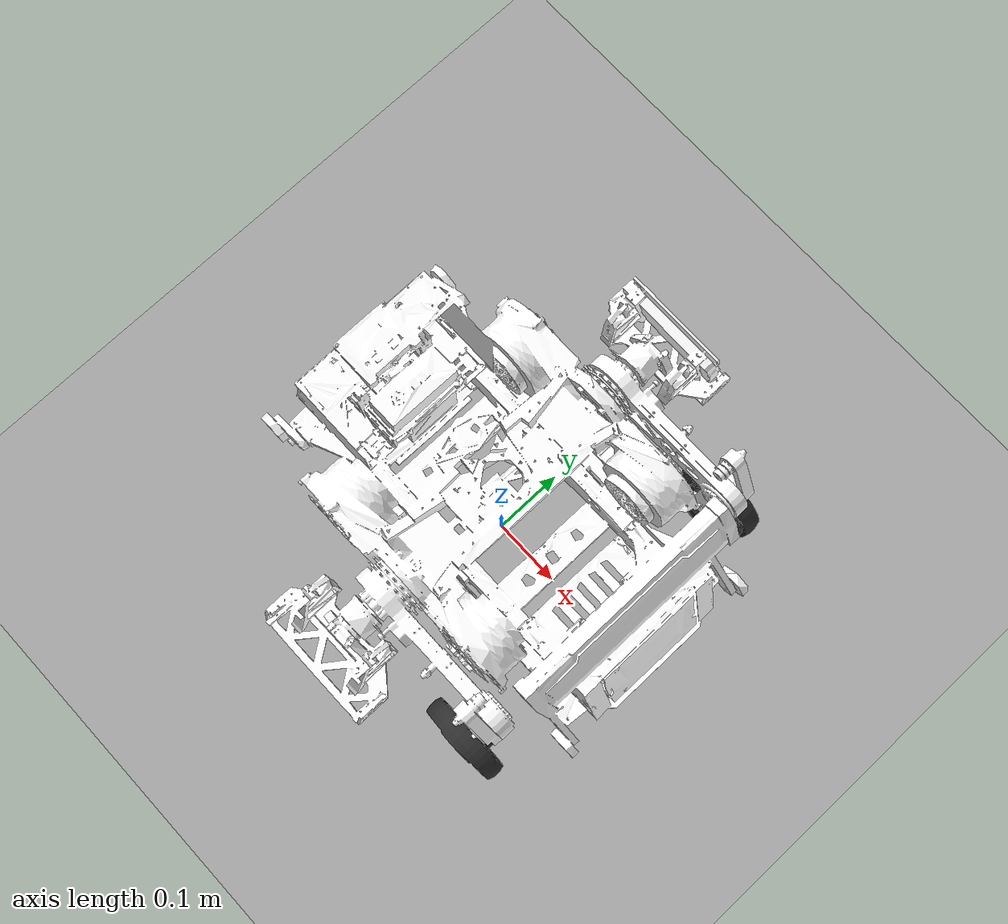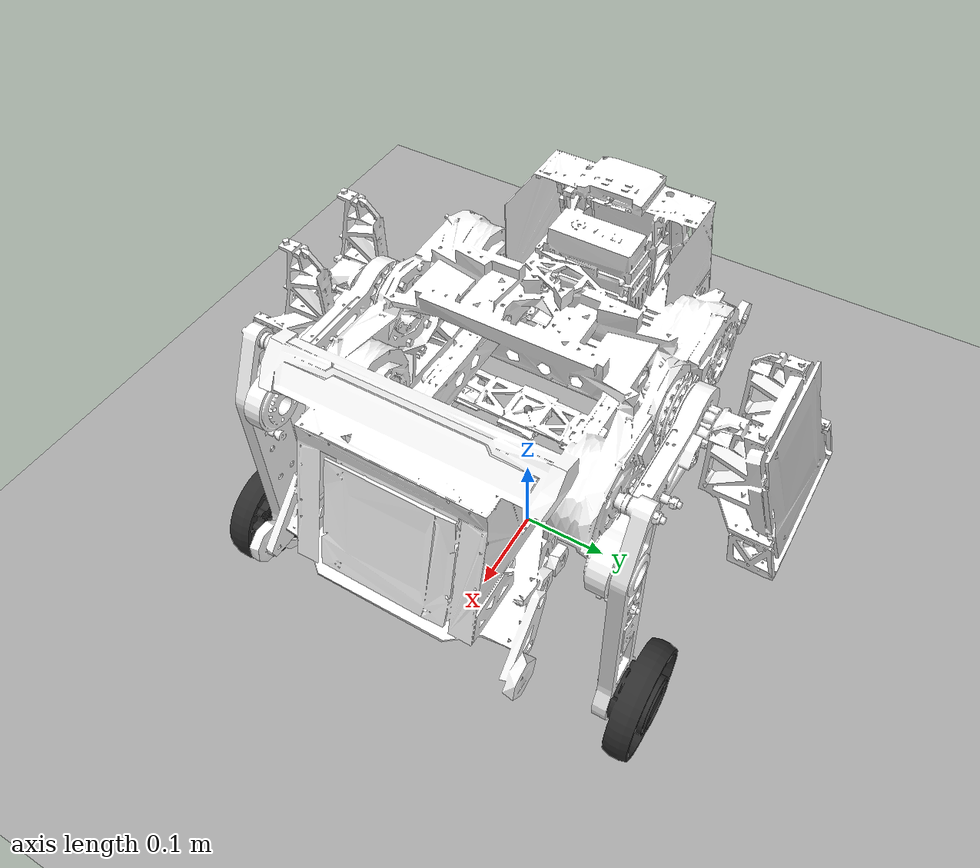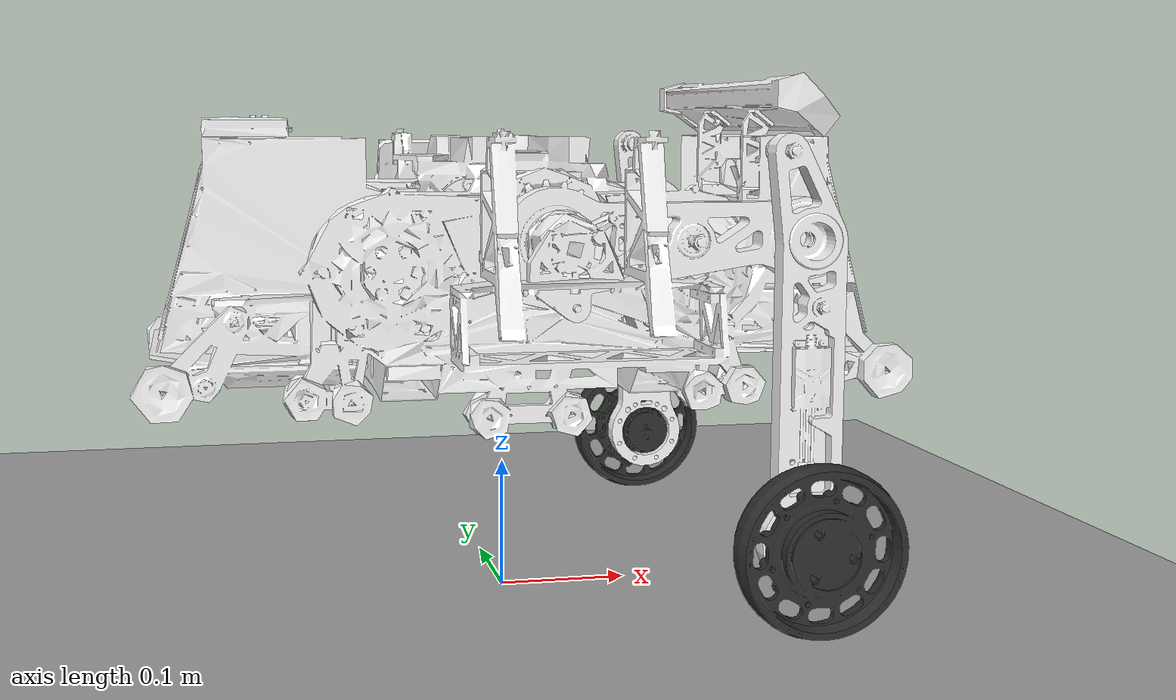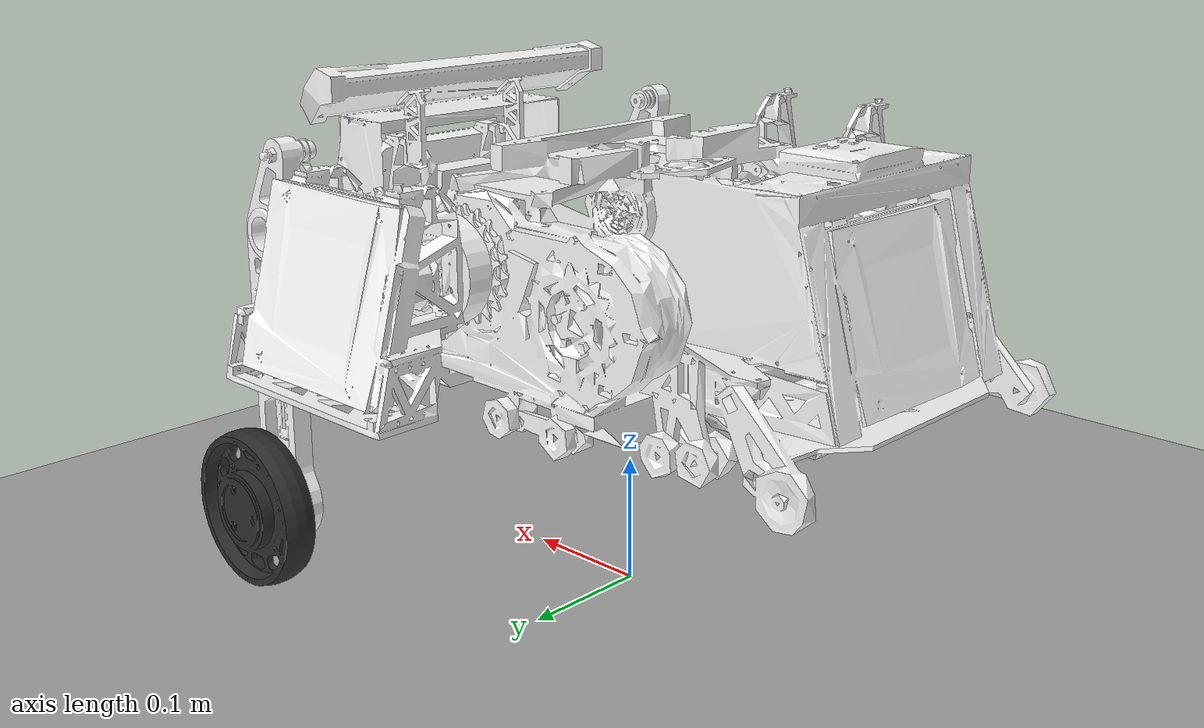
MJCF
<mujoco model="infantry_V4_serial">
  <!-- Nominal MuJoCo counterpart of the Isaac Gym infantry_V4_increase URDF. -->
  <compiler angle="radian" balanceinertia="true"
            meshdir="../../../../plane/resources/robots/infantry_V4/meshes"/>
  <option timestep="0.005" gravity="0 0 -9.81" integrator="implicitfast" solver="Newton" iterations="100"/>

  <default>
    <joint armature="0" damping="0" frictionloss="0"/>
    <!-- PhysX restitution=0.5 is approximated by an under-damped MuJoCo contact. -->
    <geom contype="1" conaffinity="1" condim="3" friction="0.5 0 0" solref="0.02 0.21545"/>
  </default>

  <asset>
    <mesh name="base_link_mesh" file="base_link.STL"/>
    <mesh name="rf0_mesh" file="rf0_Link.STL"/>
    <mesh name="rf1_mesh" file="rf1_Link.STL"/>
    <mesh name="r_wheel_mesh" file="r_wheel_Link.STL"/>
    <mesh name="lf0_mesh" file="lf0_Link.STL"/>
    <mesh name="lf1_mesh" file="lf1_Link.STL"/>
    <mesh name="l_wheel_mesh" file="l_wheel_Link.STL"/>
  </asset>

  <worldbody>
    <geom name="floor" type="plane" size="40 40 0.1" contype="1" conaffinity="1"
          friction="0.5 0 0" rgba="0.65 0.65 0.65 1"/>

    <body name="base_link" pos="0 0 0.2">
      <freejoint/>
      <inertial pos="-0.00406060 0.0008523 0.097142"
                mass="16.8775740"
                fullinertia="0.3595155 0.35249 0.45655 -0.00174358 -0.00825907 -0.00214156"/>
      <site name="imu_site" pos="0 0 0" size="0.005"/>
      <geom name="base_geom" type="mesh" mesh="base_link_mesh" rgba="1 1 1 1"/>

      <!-- Right serial chain. The order matches the URDF and Isaac DOF tensor. -->
      <body name="rf0_Link" pos="0 -0.1877 0.08725" euler="1.5708 0 0">
        <inertial pos="0.05527628 -0.01655437 -0.00927161" mass="1.1132"
                  fullinertia="0.00207047 0.00467389 0.00640479 -0.00022911 -0.00015432 0.00011008"/>
        <joint name="rf0_Joint" type="hinge" axis="0 0 1" limited="true"
               range="-100 100" actuatorfrcrange="-50 50"/>
        <geom type="mesh" mesh="rf0_mesh" rgba="1 1 1 1"/>
        <body name="rf1_Link" pos="0.17472 0 0">
          <inertial pos="-0.00283459 -0.07106759 0.0068255" mass="0.3068726"
                    fullinertia="0.00247367 0.00009262 0.00253997 0.0001249 -0.00000342 0.00003434"/>
          <joint name="rf1_Joint" type="hinge" axis="0 0 1" limited="true"
                 range="-1.1 0.65" actuatorfrcrange="-50 50"/>
          <geom type="mesh" mesh="rf1_mesh" rgba="1 1 1 1"/>
          <body name="r_wheel_Link" pos="0 -0.208 0.016">
            <inertial pos="0.0000043469 -0.00019294 0.019568" mass="0.49069"
                      fullinertia="0.00033972 0.00034147 0.00068188 0 0.00000003 -0.00000152"/>
            <joint name="r_wheel_Joint" type="hinge" axis="0 0 1"
                   actuatorfrcrange="-5 5"/>
            <geom type="mesh" mesh="r_wheel_mesh" rgba="0.18 0.18 0.18 1"/>
          </body>
        </body>
      </body>

      <!-- Left serial chain. -->
      <body name="lf0_Link" pos="0 0.1877 0.08725" euler="-1.5708 0 0">
        <inertial pos="0.055403 0.016584 -0.0092702" mass="1.1128"
                  fullinertia="0.00207221 0.00466506 0.00639795 0.00022396 -0.00015529 -0.00011027"/>
        <joint name="lf0_Joint" type="hinge" axis="0 0 1" limited="true"
               range="-100 100" actuatorfrcrange="-50 50"/>
        <geom type="mesh" mesh="lf0_mesh" rgba="1 1 1 1"/>
        <body name="lf1_Link" pos="0.17472 0 0">
          <inertial pos="-0.0028358 0.071068 0.0068255" mass="0.30687"
                    fullinertia="0.00247367 0.00009262 0.00253997 -0.0001249 -0.00000342 -0.00003434"/>
          <joint name="lf1_Joint" type="hinge" axis="0 0 1" limited="true"
                 range="-0.65 1.1" actuatorfrcrange="-50 50"/>
          <geom type="mesh" mesh="lf1_mesh" rgba="1 1 1 1"/>
          <body name="l_wheel_Link" pos="0 0.208 0.016">
            <inertial pos="-0.0000043477 0.00019294 0.019568" mass="0.49069"
                      fullinertia="0.00033972 0.00034147 0.00068188 0 -0.00000003 0.00000152"/>
            <joint name="l_wheel_Joint" type="hinge" axis="0 0 1"
                   actuatorfrcrange="-5 5"/>
            <geom type="mesh" mesh="l_wheel_mesh" rgba="0.18 0.18 0.18 1"/>
          </body>
        </body>
      </body>
    </body>
  </worldbody>

  <actuator>
    <motor name="act_rf0" joint="rf0_Joint" gear="1" ctrllimited="true" ctrlrange="-50 50"/>
    <motor name="act_rf1" joint="rf1_Joint" gear="1" ctrllimited="true" ctrlrange="-50 50"/>
    <motor name="act_rw" joint="r_wheel_Joint" gear="1" ctrllimited="true" ctrlrange="-5 5"/>
    <motor name="act_lf0" joint="lf0_Joint" gear="1" ctrllimited="true" ctrlrange="-50 50"/>
    <motor name="act_lf1" joint="lf1_Joint" gear="1" ctrllimited="true" ctrlrange="-50 50"/>
    <motor name="act_lw" joint="l_wheel_Joint" gear="1" ctrllimited="true" ctrlrange="-5 5"/>
  </actuator>

  <sensor>
    <framequat name="orientation" objtype="body" objname="base_link"/>
    <gyro name="base_ang_vel" site="imu_site"/>
    <accelerometer name="base_lin_acc" site="imu_site"/>
    <jointpos name="rf0_Joint_p" joint="rf0_Joint"/>
    <jointvel name="rf0_Joint_v" joint="rf0_Joint"/>
    <jointpos name="rf1_Joint_p" joint="rf1_Joint"/>
    <jointvel name="rf1_Joint_v" joint="rf1_Joint"/>
    <jointpos name="r_wheel_Joint_p" joint="r_wheel_Joint"/>
    <jointvel name="r_wheel_Joint_v" joint="r_wheel_Joint"/>
    <jointpos name="lf0_Joint_p" joint="lf0_Joint"/>
    <jointvel name="lf0_Joint_v" joint="lf0_Joint"/>
    <jointpos name="lf1_Joint_p" joint="lf1_Joint"/>
    <jointvel name="lf1_Joint_v" joint="lf1_Joint"/>
    <jointpos name="l_wheel_Joint_p" joint="l_wheel_Joint"/>
    <jointvel name="l_wheel_Joint_v" joint="l_wheel_Joint"/>
  </sensor>
</mujoco>
